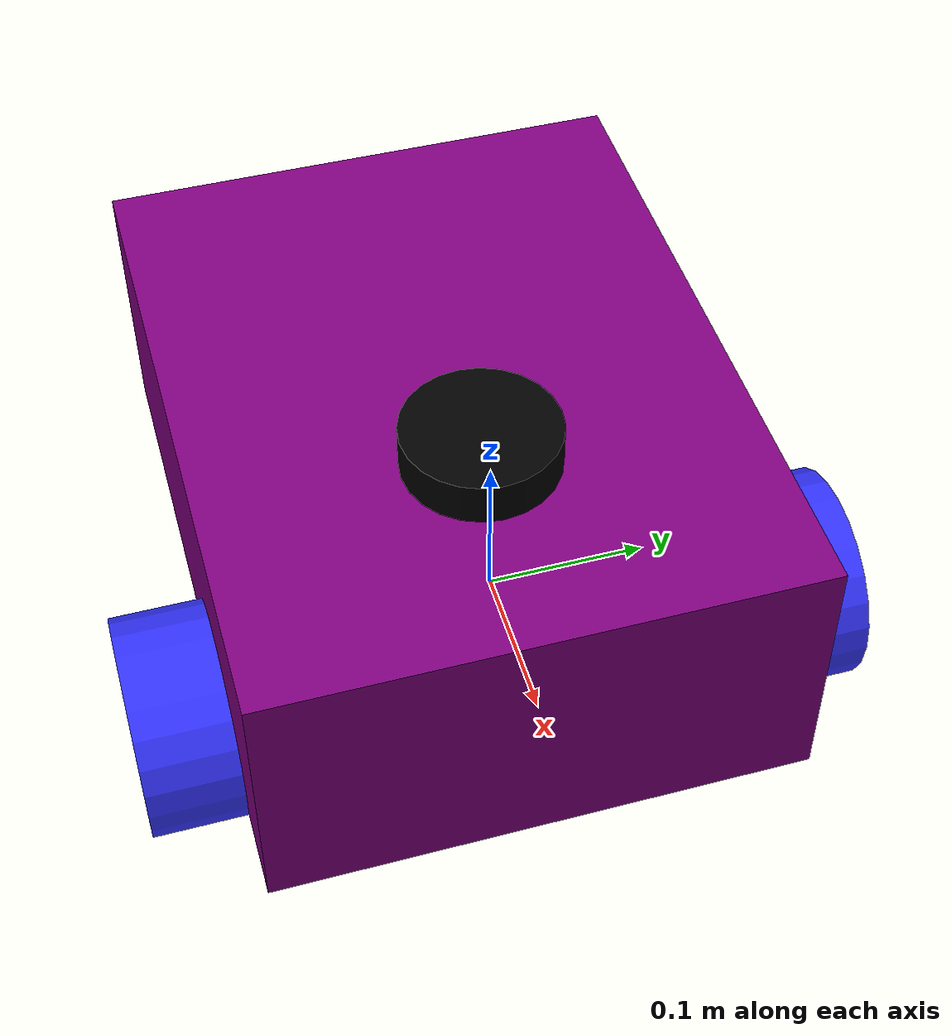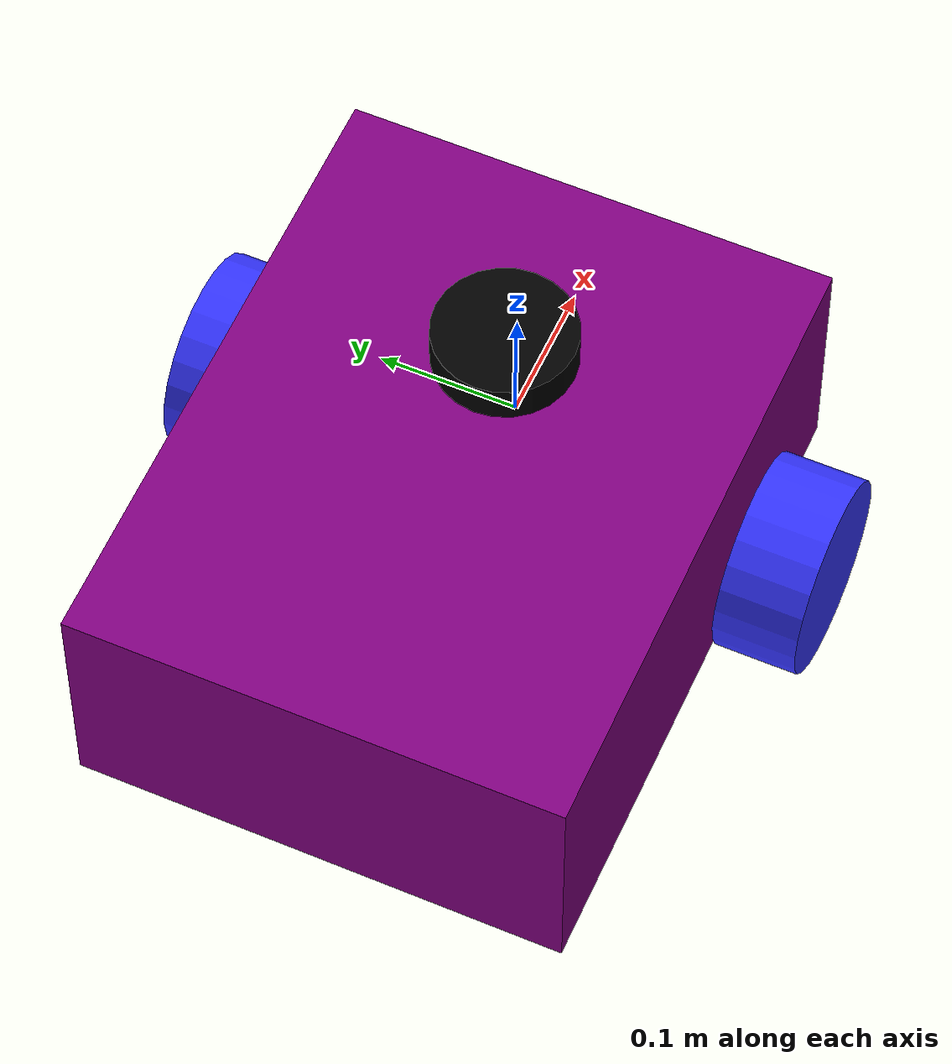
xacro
<?xml version="1.0"?>
<robot xmlns:xacro="http://www.ros.org/wiki/xacro"  name="robot">

    <xacro:arg name="use_ros2_control" default="true"/>
    <xacro:arg name="sim_mode" default="false"/>

    <xacro:include filename="robot_core.xacro" />

    <xacro:if value="$(arg use_ros2_control)">
        <xacro:include filename="ros2_control.xacro" />
    </xacro:if>
    <xacro:unless value="$(arg use_ros2_control)">
        <xacro:include filename="gazebo_control.xacro" />
    </xacro:unless>
    <xacro:include filename="lidar.xacro" />

</robot>

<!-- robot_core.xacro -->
<robot xmlns:xacro="http://www.ros.org/wiki/xacro" >

    <xacro:include filename="inertial_macros.xacro"/>

    <xacro:property name="chassis_length" value="0.26"/>
    <xacro:property name="chassis_width" value="0.2"/>
    <xacro:property name="chassis_height" value="0.13"/>
    <xacro:property name="chassis_mass" value="1.0"/>
    <xacro:property name="wheel_radius" value="0.035"/>
    <xacro:property name="wheel_thickness" value="0.04"/>
    <xacro:property name="wheel_mass" value="0.05"/>
    <xacro:property name="wheel_offset_x" value="-0.1"/>
    <xacro:property name="wheel_offset_y" value="0.120"/>
    <xacro:property name="wheel_offset_z" value="-0.065"/>
    <xacro:property name="caster_wheel_radius" value="0.026"/>
    <xacro:property name="caster_wheel_mass" value="-0.1"/>
    <xacro:property name="caster_wheel_offset_x" value="-0.0715"/>
    <xacro:property name="caster_wheel_offset_z" value="${wheel_offset_z - wheel_radius + caster_wheel_radius}"/>

    <material name="white">
        <color rgba="1 1 1 1" />
    </material>

    <material name="purple">
        <color rgba="0.5 0.0 0.5 1.0"/>
    </material>

    <material name="blue">
        <color rgba="0.2 0.2 1 1"/>
    </material>

    <material name="black">
        <color rgba="0 0 0 1"/>
    </material>

    <material name="red">
        <color rgba="1 0 0 1"/>
    </material>

    <!-- BASE LINK -->

    <link name="base_link">

    </link>

    <!-- BASE_FOOTPRINT LINK -->

    <joint name="base_footprint_joint" type="fixed">
        <parent link="base_link"/>
        <child link="base_footprint"/>
        <origin xyz="0 0 0" rpy="0 0 0"/>
    </joint>

    <link name="base_footprint">
    </link>

    <!-- CHASSIS LINK -->

    <joint name="chassis_joint" type="fixed">
        <parent link="base_link"/>
        <child link="chassis"/>
        <origin xyz="-0.1 0 0"/>
    </joint>

    <link name="chassis">
        <visual>
            <origin xyz="0 0 0"/>
            <geometry>
                <box size="0.45 0.35 0.18"/>
            </geometry>
            <material name="purple"/>
        </visual>
        <collision>
            <origin xyz="0 0 0"/>
            <geometry>
                <box size="0.45 0.35 0.18"/>
            </geometry>
        </collision>
        <inertial>
          <mass value="12"/>
          <inertia ixx="0.13" ixy="0.0" ixz="0.0" iyy="0.21" iyz="0.0" izz="0.13"/>
        </inertial>
    </link>

    <gazebo reference="chassis">
        <material>Gazebo/Orange</material>
    </gazebo>

    <!-- LEFT WHEEL LINK -->

    <joint name="left_wheel_joint" type="continuous">
        <parent link="base_link"/>
        <child link="left_wheel"/>
        <origin xyz="0 0.205 -0.065" rpy="-1.5708 0 0" />
        <axis xyz="0 0 1"/>
    </joint>

    <link name="left_wheel">
        <visual>
            <geometry>
                <cylinder radius="0.07" length="0.06"/>
            </geometry>
            <material name="blue"/>
        </visual>
        <collision>
            <geometry>
                <sphere radius="0.07"/>
            </geometry>
        </collision>
        <inertial>
          <mass value="0.7"/>
          <inertia ixx="0.01" ixy="0.0" ixz="0.0" iyy="0.005" iyz="0.0" izz="0.005"/>
        </inertial>
    </link>

    <gazebo reference="left_wheel">
        <material>Gazebo/Blue</material>
    </gazebo>

    <!-- RIGHT WHEEL LINK -->

    <joint name="right_wheel_joint" type="continuous">
        <parent link="base_link"/>
        <child link="right_wheel"/>
        <origin xyz="0 -0.205 -0.065" rpy="-1.5708 0  0" />
        <axis xyz="0 0 1"/>
    </joint>

    <link name="right_wheel">
        <visual>
            <geometry>
                <cylinder radius="0.07" length="0.06"/>
            </geometry>
            <material name="blue"/>
        </visual>
        <collision>
            <geometry>
                <sphere radius="0.07"/>
            </geometry>
        </collision>
        <inertial>
          <mass value="0.7"/>
          <inertia ixx="0.01" ixy="0.0" ixz="0.0" iyy="0.005" iyz="0.0" izz="0.005"/>
        </inertial>
    </link>

    <gazebo reference="right_wheel">
        <material>Gazebo/Blue</material>
    </gazebo>

    <!-- CASTER WHEEL LINK -->

    <joint name="caster_wheel_joint" type="fixed">
        <parent link="chassis"/>
        <child link="caster_wheel"/>
        <origin xyz="-0.1 0 -0.0715"/>
    </joint>

    <link name="caster_wheel">
        <visual>
            <geometry>
                <sphere radius="0.06"/>
            </geometry>
            <material name="white"/>
        </visual>
        <collision>
            <geometry>
                <sphere radius="0.06"/>
            </geometry>
        </collision>
        <inertial>
          <mass value="0.9"/>
          <inertia ixx="0.0001" ixy="0.0" ixz="0.0" iyy="0.0001" iyz="0.0" izz="0.0001"/>
        </inertial>
    </link>

    <gazebo reference="caster_wheel">
        <material>Gazebo/White</material>
        <mu1 value="0.001"/>
        <mu2 value="0.001"/>
    </gazebo>

</robot>

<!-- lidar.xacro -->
<robot xmlns:xacro="http://www.ros.org/wiki/xacro" >

    <joint name="laser_joint" type="fixed">
        <parent link="chassis"/>
        <child link="laser_frame"/>
        <origin xyz="0.08 0 0.0985" rpy="0 0 0"/>
    </joint>

    <link name="laser_frame">
        <visual>
            <geometry>
                <cylinder radius="0.05" length="0.04"/>
            </geometry>
            <material name="black"/>
        </visual>
        <collision>
            <geometry>
                <cylinder radius="0.05" length="0.04"/>
            </geometry>
        </collision>
        <inertial>
          <mass value="0.5"/>
          <origin xyz="0 0 0" rpy="0 0 0"/>
          <inertia ixx="0.01" iyy="0.01" izz="0.01" ixy="0" ixz="0" iyz="0"/>
    </inertial>

    </link>

    <gazebo reference="laser_frame">
        <material>Gazebo/Black</material>

        <sensor name="laser" type="gpu_lidar">
            <pose> 0 0 0 0 0 0 </pose>
            <visualize>false</visualize>
            <update_rate>10</update_rate>
            <lidar>
                <scan>
                    <horizontal>
                        <samples>360</samples>
                        <min_angle>-3.14</min_angle>
                        <max_angle>3.14</max_angle>
                    </horizontal>
                </scan>
                <range>
                    <min>0.3</min>
                    <max>12</max>
                </range>
            </lidar>
            <topic>scan</topic>
            <gz_frame_id>laser_frame</gz_frame_id>
        </sensor>
    </gazebo>

</robot>
